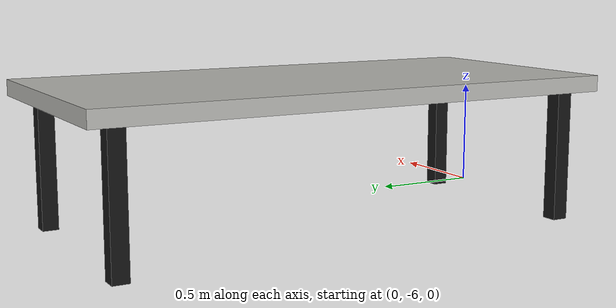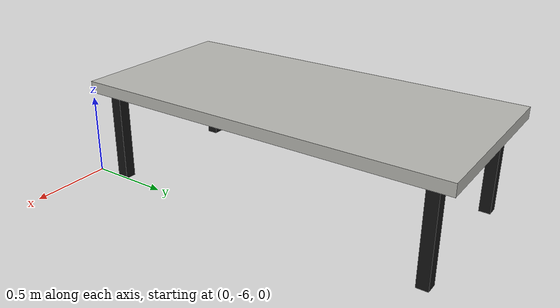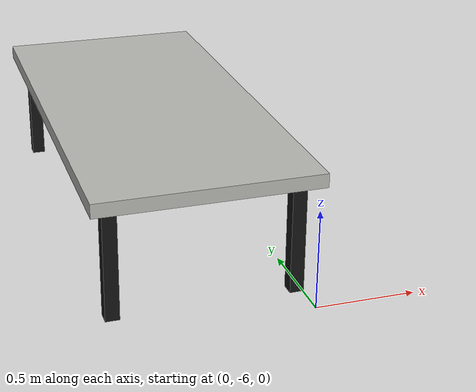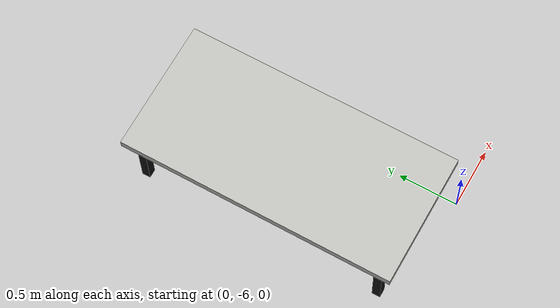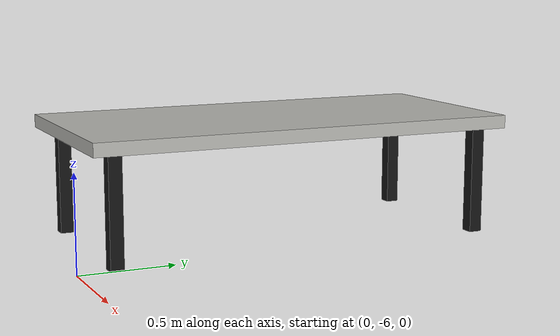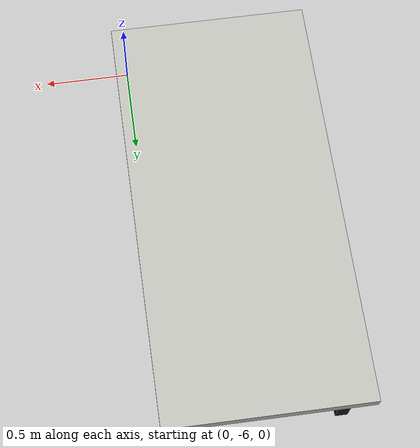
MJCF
<?xml version="1.0" encoding="utf-8"?>
<mujoco model="arena_pp_box_table">
  <compiler angle="radian" autolimits="true"/>
  <asset>
    <material name="table_top" rgba="0.72 0.72 0.70 1" specular="0.12" shininess="0.18"/>
    <material name="table_frame" rgba="0.08 0.08 0.08 1" specular="0.20" shininess="0.25"/>
  </asset>
  <worldbody>
    <body name="table">
      <geom name="top_collision" type="box" pos="-0.48 -4.775 0.61"
            size="0.55 1.15 0.035" material="table_top"
            group="1" contype="1" conaffinity="1" condim="4"
            friction="1.0 0.05 0.01" solref="0.004 1.0" solimp="0.95 0.99 0.001"/>
      <geom name="leg_xneg_yneg" type="box" pos="-0.93 -5.80 0.30"
            size="0.035 0.035 0.30" material="table_frame"
            group="1" contype="1" conaffinity="1"/>
      <geom name="leg_xneg_ypos" type="box" pos="-0.93 -3.75 0.30"
            size="0.035 0.035 0.30" material="table_frame"
            group="1" contype="1" conaffinity="1"/>
      <geom name="leg_xpos_yneg" type="box" pos="-0.03 -5.80 0.30"
            size="0.035 0.035 0.30" material="table_frame"
            group="1" contype="1" conaffinity="1"/>
      <geom name="leg_xpos_ypos" type="box" pos="-0.03 -3.75 0.30"
            size="0.035 0.035 0.30" material="table_frame"
            group="1" contype="1" conaffinity="1"/>
    </body>
  </worldbody>
</mujoco>
